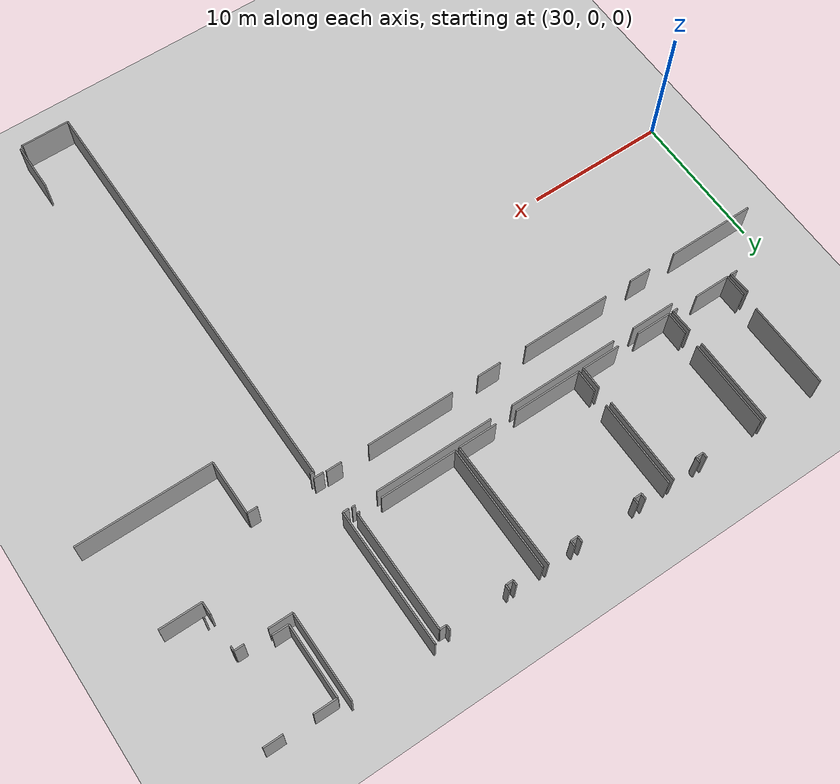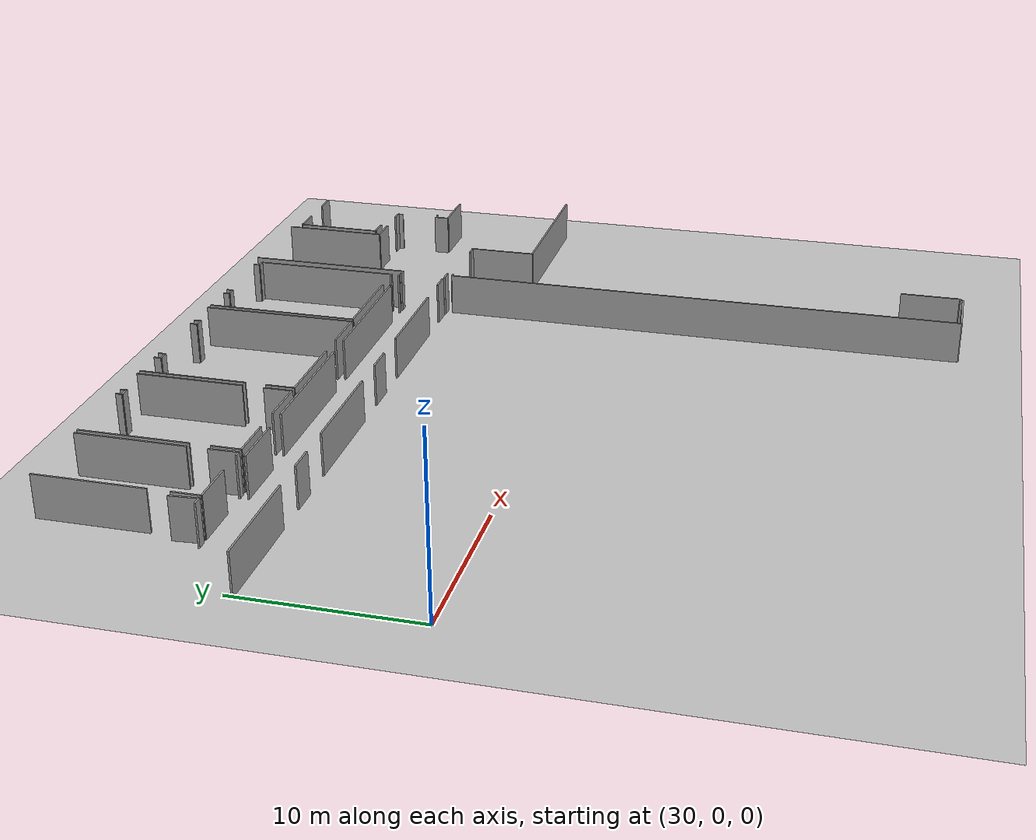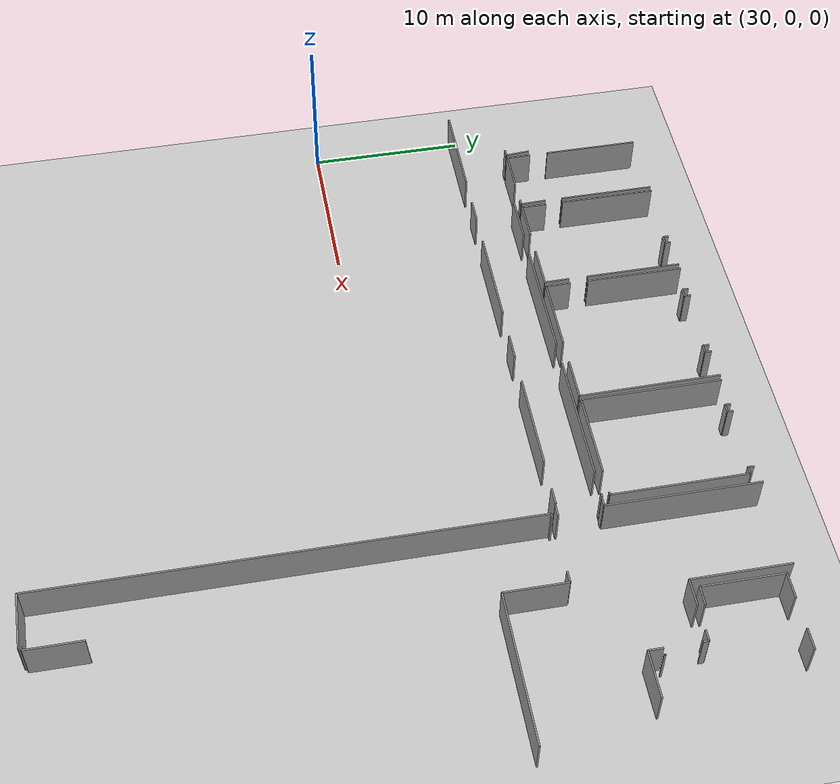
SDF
<sdf version="1.6">
 <world name="default">
  <model name="ground_plane">
   <static>1</static>
   <link name="link">
    <collision name="collision">
     <geometry><plane><normal>0 0 1</normal><size>100 100</size></plane></geometry>
     <surface><friction><ode><mu>100</mu><mu2>50</mu2></ode></friction></surface>
    </collision>
    <visual name="visual">
     <cast_shadows>0</cast_shadows>
     <geometry><plane><normal>0 0 1</normal><size>100 100</size></plane></geometry>
     <material>
      <script><uri>file://media/materials/scripts/gazebo.material</uri><name>Gazebo/Grey</name></script>
     </material>
    </visual>
   </link>
  </model>
  <model name="50010536_PLAN4">
   <static>1</static>
   <link name="Wall_119">
    <collision name="Wall_119_Collision">
     <geometry><box><size>1.10237120274 0.1 2.5</size></box></geometry>
     <pose>0.551185601371 0 1.25 0 0 0</pose>
    </collision>
    <visual name="Wall_119_Visual">
     <pose>0.551185601371 0 1.25 0 0 0</pose>
     <geometry><box><size>1.10237120274 0.1 2.5</size></box></geometry>
     <material>
      <script><uri>file://media/materials/scripts/gazebo.material</uri><name>Gazebo/Grey</name></script>
      <ambient>1 1 1 1</ambient>
     </material>
    </visual>
    <pose>165.775246802 -12.5381074818 0 0 0 3.14159265359</pose>
   </link>
   <link name="Wall_120">
    <collision name="Wall_120_Collision">
     <geometry><box><size>6.30009840333 0.1 2.5</size></box></geometry>
     <pose>3.15004920166 0 1.25 0 0 0</pose>
    </collision>
    <visual name="Wall_120_Visual">
     <pose>3.15004920166 0 1.25 0 0 0</pose>
     <geometry><box><size>6.30009840333 0.1 2.5</size></box></geometry>
     <material>
      <script><uri>file://media/materials/scripts/gazebo.material</uri><name>Gazebo/Grey</name></script>
      <ambient>1 1 1 1</ambient>
     </material>
    </visual>
    <pose>162.703285401 -12.5381074818 0 0 0 3.14159265359</pose>
   </link>
   <link name="Wall_121">
    <collision name="Wall_121_Collision">
     <geometry><box><size>1.70447258991 0.1 2.5</size></box></geometry>
     <pose>0.852236294956 0 1.25 0 0 0</pose>
    </collision>
    <visual name="Wall_121_Visual">
     <pose>0.852236294956 0 1.25 0 0 0</pose>
     <geometry><box><size>1.70447258991 0.1 2.5</size></box></geometry>
     <material>
      <script><uri>file://media/materials/scripts/gazebo.material</uri><name>Gazebo/Grey</name></script>
      <ambient>1 1 1 1</ambient>
     </material>
    </visual>
    <pose>154.420899597 -12.5381074818 0 0 0 3.14159265359</pose>
   </link>
   <link name="Wall_122">
    <collision name="Wall_122_Collision">
     <geometry><box><size>6.40116814272 0.1 2.5</size></box></geometry>
     <pose>3.20058407136 0 1.25 0 0 0</pose>
    </collision>
    <visual name="Wall_122_Visual">
     <pose>3.20058407136 0 1.25 0 0 0</pose>
     <geometry><box><size>6.40116814272 0.1 2.5</size></box></geometry>
     <material>
      <script><uri>file://media/materials/scripts/gazebo.material</uri><name>Gazebo/Grey</name></script>
      <ambient>1 1 1 1</ambient>
     </material>
    </visual>
    <pose>150.708999143 -12.5381074818 0 0 0 3.14159265359</pose>
   </link>
   <link name="Wall_123">
    <collision name="Wall_123_Collision">
     <geometry><box><size>1.60340285052 0.1 2.5</size></box></geometry>
     <pose>0.801701425261 0 1.25 0 0 0</pose>
    </collision>
    <visual name="Wall_123_Visual">
     <pose>0.801701425261 0 1.25 0 0 0</pose>
     <geometry><box><size>1.60340285052 0.1 2.5</size></box></geometry>
     <material>
      <script><uri>file://media/materials/scripts/gazebo.material</uri><name>Gazebo/Grey</name></script>
      <ambient>1 1 1 1</ambient>
     </material>
    </visual>
    <pose>142.31310034 -12.5381074818 0 0 0 3.14159265359</pose>
   </link>
   <link name="Wall_124">
    <collision name="Wall_124_Collision">
     <geometry><box><size>6.3125416627 0.1 2.5</size></box></geometry>
     <pose>3.15627083135 0 1.25 0 0 0</pose>
    </collision>
    <visual name="Wall_124_Visual">
     <pose>3.15627083135 0 1.25 0 0 0</pose>
     <geometry><box><size>6.3125416627 0.1 2.5</size></box></geometry>
     <material>
      <script><uri>file://media/materials/scripts/gazebo.material</uri><name>Gazebo/Grey</name></script>
      <ambient>1 1 1 1</ambient>
     </material>
    </visual>
    <pose>138.714712884 -12.5381074818 0 0 0 3.14159265359</pose>
   </link>
   <link name="Wall_148">
    <collision name="Wall_148_Collision">
     <geometry><box><size>3.18902961623 0.1 2.5</size></box></geometry>
     <pose>1.59451480811 0 1.25 0 0 0</pose>
    </collision>
    <visual name="Wall_148_Visual">
     <pose>1.59451480811 0 1.25 0 0 0</pose>
     <geometry><box><size>3.18902961623 0.1 2.5</size></box></geometry>
     <material>
      <script><uri>file://media/materials/scripts/gazebo.material</uri><name>Gazebo/Grey</name></script>
      <ambient>1 1 1 1</ambient>
     </material>
    </visual>
    <pose>141.09670825 -9.72273116846 0 0 0 0.0</pose>
   </link>
   <link name="Wall_149">
    <collision name="Wall_149_Collision">
     <geometry><box><size>7.99365139828 0.1 2.5</size></box></geometry>
     <pose>3.99682569914 0 1.25 0 0 0</pose>
    </collision>
    <visual name="Wall_149_Visual">
     <pose>3.99682569914 0 1.25 0 0 0</pose>
     <geometry><box><size>7.99365139828 0.1 2.5</size></box></geometry>
     <material>
      <script><uri>file://media/materials/scripts/gazebo.material</uri><name>Gazebo/Grey</name></script>
      <ambient>1 1 1 1</ambient>
     </material>
    </visual>
    <pose>145.855366156 -9.72273116846 0 0 0 0.0</pose>
   </link>
   <link name="Wall_150">
    <collision name="Wall_150_Collision">
     <geometry><box><size>8.5000158715 0.1 2.5</size></box></geometry>
     <pose>4.25000793575 0 1.25 0 0 0</pose>
    </collision>
    <visual name="Wall_150_Visual">
     <pose>4.25000793575 0 1.25 0 0 0</pose>
     <geometry><box><size>8.5000158715 0.1 2.5</size></box></geometry>
     <material>
      <script><uri>file://media/materials/scripts/gazebo.material</uri><name>Gazebo/Grey</name></script>
      <ambient>1 1 1 1</ambient>
     </material>
    </visual>
    <pose>155.468926769 -9.72273116846 0 0 0 0.0</pose>
   </link>
   <link name="Wall_151">
    <collision name="Wall_151_Collision">
     <geometry><box><size>0.243848006667 0.1 2.5</size></box></geometry>
     <pose>0.121924003333 0 1.25 0 0 0</pose>
    </collision>
    <visual name="Wall_151_Visual">
     <pose>0.121924003333 0 1.25 0 0 0</pose>
     <geometry><box><size>0.243848006667 0.1 2.5</size></box></geometry>
     <material>
      <script><uri>file://media/materials/scripts/gazebo.material</uri><name>Gazebo/Grey</name></script>
      <ambient>1 1 1 1</ambient>
     </material>
    </visual>
    <pose>165.531460496 -9.72273116846 0 0 0 0.0224962042779</pose>
   </link>
   <link name="Wall_214">
    <collision name="Wall_214_Collision">
     <geometry><box><size>0.505094752881 0.1 2.5</size></box></geometry>
     <pose>0.25254737644 0 1.25 0 0 0</pose>
    </collision>
    <visual name="Wall_214_Visual">
     <pose>0.25254737644 0 1.25 0 0 0</pose>
     <geometry><box><size>0.505094752881 0.1 2.5</size></box></geometry>
     <material>
      <script><uri>file://media/materials/scripts/gazebo.material</uri><name>Gazebo/Grey</name></script>
      <ambient>1 1 1 1</ambient>
     </material>
    </visual>
    <pose>136.606469225 -9.25557565946 0 0 0 3.14159265359</pose>
   </link>
   <link name="Wall_218">
    <collision name="Wall_218_Collision">
     <geometry><box><size>1.59688646105 0.1 2.5</size></box></geometry>
     <pose>0.798443230526 0 1.25 0 0 0</pose>
    </collision>
    <visual name="Wall_218_Visual">
     <pose>0.798443230526 0 1.25 0 0 0</pose>
     <geometry><box><size>1.59688646105 0.1 2.5</size></box></geometry>
     <material>
      <script><uri>file://media/materials/scripts/gazebo.material</uri><name>Gazebo/Grey</name></script>
      <ambient>1 1 1 1</ambient>
     </material>
    </visual>
    <pose>136.487623401 -7.6631177983 0 0 0 -1.4963039862</pose>
   </link>
   <link name="Wall_219">
    <collision name="Wall_219_Collision">
     <geometry><box><size>0.391581754119 0.1 2.5</size></box></geometry>
     <pose>0.195790877059 0 1.25 0 0 0</pose>
    </collision>
    <visual name="Wall_219_Visual">
     <pose>0.195790877059 0 1.25 0 0 0</pose>
     <geometry><box><size>0.391581754119 0.1 2.5</size></box></geometry>
     <material>
      <script><uri>file://media/materials/scripts/gazebo.material</uri><name>Gazebo/Grey</name></script>
      <ambient>1 1 1 1</ambient>
     </material>
    </visual>
    <pose>141.42937498 -9.25557565946 0 0 0 3.14159265359</pose>
   </link>
   <link name="Wall_220">
    <collision name="Wall_220_Collision">
     <geometry><box><size>2.5881979494 0.1 2.5</size></box></geometry>
     <pose>1.2940989747 0 1.25 0 0 0</pose>
    </collision>
    <visual name="Wall_220_Visual">
     <pose>1.2940989747 0 1.25 0 0 0</pose>
     <geometry><box><size>2.5881979494 0.1 2.5</size></box></geometry>
     <material>
      <script><uri>file://media/materials/scripts/gazebo.material</uri><name>Gazebo/Grey</name></script>
      <ambient>1 1 1 1</ambient>
     </material>
    </visual>
    <pose>139.472228042 -9.25557565946 0 0 0 3.14159265359</pose>
   </link>
   <link name="Wall_221">
    <collision name="Wall_221_Collision">
     <geometry><box><size>1.61604926515 0.1 2.5</size></box></geometry>
     <pose>0.808024632575 0 1.25 0 0 0</pose>
    </collision>
    <visual name="Wall_221_Visual">
     <pose>0.808024632575 0 1.25 0 0 0</pose>
     <geometry><box><size>1.61604926515 0.1 2.5</size></box></geometry>
     <material>
      <script><uri>file://media/materials/scripts/gazebo.material</uri><name>Gazebo/Grey</name></script>
      <ambient>1 1 1 1</ambient>
     </material>
    </visual>
    <pose>136.884030092 -9.25557565946 0 0 0 1.57079632679</pose>
   </link>
   <link name="Wall_222">
    <collision name="Wall_222_Collision">
     <geometry><box><size>6.22455004285 0.1 2.5</size></box></geometry>
     <pose>3.11227502143 0 1.25 0 0 0</pose>
    </collision>
    <visual name="Wall_222_Visual">
     <pose>3.11227502143 0 1.25 0 0 0</pose>
     <geometry><box><size>6.22455004285 0.1 2.5</size></box></geometry>
     <material>
      <script><uri>file://media/materials/scripts/gazebo.material</uri><name>Gazebo/Grey</name></script>
      <ambient>1 1 1 1</ambient>
     </material>
    </visual>
    <pose>136.884030092 -6.41117353903 0 0 0 1.57079632679</pose>
   </link>
   <link name="Wall_223">
    <collision name="Wall_223_Collision">
     <geometry><box><size>6.24125956258 0.1 2.5</size></box></geometry>
     <pose>3.12062978129 0 1.25 0 0 0</pose>
    </collision>
    <visual name="Wall_223_Visual">
     <pose>3.12062978129 0 1.25 0 0 0</pose>
     <geometry><box><size>6.24125956258 0.1 2.5</size></box></geometry>
     <material>
      <script><uri>file://media/materials/scripts/gazebo.material</uri><name>Gazebo/Grey</name></script>
      <ambient>1 1 1 1</ambient>
     </material>
    </visual>
    <pose>141.372745453 -0.186623496175 0 0 0 -1.57079632679</pose>
   </link>
   <link name="Wall_224">
    <collision name="Wall_224_Collision">
     <geometry><box><size>1.66752059618 0.1 2.5</size></box></geometry>
     <pose>0.833760298092 0 1.25 0 0 0</pose>
    </collision>
    <visual name="Wall_224_Visual">
     <pose>0.833760298092 0 1.25 0 0 0</pose>
     <geometry><box><size>1.66752059618 0.1 2.5</size></box></geometry>
     <material>
      <script><uri>file://media/materials/scripts/gazebo.material</uri><name>Gazebo/Grey</name></script>
      <ambient>1 1 1 1</ambient>
     </material>
    </visual>
    <pose>141.372745453 -7.58901691902 0 0 0 -1.53682947907</pose>
   </link>
   <link name="Wall_225">
    <collision name="Wall_225_Collision">
     <geometry><box><size>2.80532012824 0.1 2.5</size></box></geometry>
     <pose>1.40266006412 0 1.25 0 0 0</pose>
    </collision>
    <visual name="Wall_225_Visual">
     <pose>1.40266006412 0 1.25 0 0 0</pose>
     <geometry><box><size>2.80532012824 0.1 2.5</size></box></geometry>
     <material>
      <script><uri>file://media/materials/scripts/gazebo.material</uri><name>Gazebo/Grey</name></script>
      <ambient>1 1 1 1</ambient>
     </material>
    </visual>
    <pose>148.643925975 -9.2664190712 0 0 0 3.14159265359</pose>
   </link>
   <link name="Wall_226">
    <collision name="Wall_226_Collision">
     <geometry><box><size>2.54655112212 0.1 2.5</size></box></geometry>
     <pose>1.27327556106 0 1.25 0 0 0</pose>
    </collision>
    <visual name="Wall_226_Visual">
     <pose>1.27327556106 0 1.25 0 0 0</pose>
     <geometry><box><size>2.54655112212 0.1 2.5</size></box></geometry>
     <material>
      <script><uri>file://media/materials/scripts/gazebo.material</uri><name>Gazebo/Grey</name></script>
      <ambient>1 1 1 1</ambient>
     </material>
    </visual>
    <pose>144.266184173 -9.2664190712 0 0 0 3.14159265359</pose>
   </link>
   <link name="Wall_227">
    <collision name="Wall_227_Collision">
     <geometry><box><size>1.66478113196 0.1 2.5</size></box></geometry>
     <pose>0.832390565978 0 1.25 0 0 0</pose>
    </collision>
    <visual name="Wall_227_Visual">
     <pose>0.832390565978 0 1.25 0 0 0</pose>
     <geometry><box><size>1.66478113196 0.1 2.5</size></box></geometry>
     <material>
      <script><uri>file://media/materials/scripts/gazebo.material</uri><name>Gazebo/Grey</name></script>
      <ambient>1 1 1 1</ambient>
     </material>
    </visual>
    <pose>141.719633051 -9.2664190712 0 0 0 1.57079632679</pose>
   </link>
   <link name="Wall_228">
    <collision name="Wall_228_Collision">
     <geometry><box><size>6.24961432245 0.1 2.5</size></box></geometry>
     <pose>3.12480716122 0 1.25 0 0 0</pose>
    </collision>
    <visual name="Wall_228_Visual">
     <pose>3.12480716122 0 1.25 0 0 0</pose>
     <geometry><box><size>6.24961432245 0.1 2.5</size></box></geometry>
     <material>
      <script><uri>file://media/materials/scripts/gazebo.material</uri><name>Gazebo/Grey</name></script>
      <ambient>1 1 1 1</ambient>
     </material>
    </visual>
    <pose>141.719633051 -6.45271878869 0 0 0 1.57079632679</pose>
   </link>
   <link name="Wall_229">
    <collision name="Wall_229_Collision">
     <geometry><box><size>0.36730470114 0.1 2.5</size></box></geometry>
     <pose>0.18365235057 0 1.25 0 0 0</pose>
    </collision>
    <visual name="Wall_229_Visual">
     <pose>0.18365235057 0 1.25 0 0 0</pose>
     <geometry><box><size>0.36730470114 0.1 2.5</size></box></geometry>
     <material>
      <script><uri>file://media/materials/scripts/gazebo.material</uri><name>Gazebo/Grey</name></script>
      <ambient>1 1 1 1</ambient>
     </material>
    </visual>
    <pose>146.060299019 -0.203104466241 0 0 0 -1.57079632679</pose>
   </link>
   <link name="Wall_230">
    <collision name="Wall_230_Collision">
     <geometry><box><size>0.54394819541 0.1 2.5</size></box></geometry>
     <pose>0.271974097705 0 1.25 0 0 0</pose>
    </collision>
    <visual name="Wall_230_Visual">
     <pose>0.271974097705 0 1.25 0 0 0</pose>
     <geometry><box><size>0.54394819541 0.1 2.5</size></box></geometry>
     <material>
      <script><uri>file://media/materials/scripts/gazebo.material</uri><name>Gazebo/Grey</name></script>
      <ambient>1 1 1 1</ambient>
     </material>
    </visual>
    <pose>146.060299019 -0.570409167381 0 0 0 0.0</pose>
   </link>
   <link name="Wall_231">
    <collision name="Wall_231_Collision">
     <geometry><box><size>0.372332793702 0.1 2.5</size></box></geometry>
     <pose>0.186166396851 0 1.25 0 0 0</pose>
    </collision>
    <visual name="Wall_231_Visual">
     <pose>0.186166396851 0 1.25 0 0 0</pose>
     <geometry><box><size>0.372332793702 0.1 2.5</size></box></geometry>
     <material>
      <script><uri>file://media/materials/scripts/gazebo.material</uri><name>Gazebo/Grey</name></script>
      <ambient>1 1 1 1</ambient>
     </material>
    </visual>
    <pose>146.604247215 -0.570409167381 0 0 0 1.57079632679</pose>
   </link>
   <link name="Wall_232">
    <collision name="Wall_232_Collision">
     <geometry><box><size>6.21309716535 0.1 2.5</size></box></geometry>
     <pose>3.10654858267 0 1.25 0 0 0</pose>
    </collision>
    <visual name="Wall_232_Visual">
     <pose>3.10654858267 0 1.25 0 0 0</pose>
     <geometry><box><size>6.21309716535 0.1 2.5</size></box></geometry>
     <material>
      <script><uri>file://media/materials/scripts/gazebo.material</uri><name>Gazebo/Grey</name></script>
      <ambient>1 1 1 1</ambient>
     </material>
    </visual>
    <pose>148.628181443 -0.198076373679 0 0 0 -1.57079632679</pose>
   </link>
   <link name="Wall_233">
    <collision name="Wall_233_Collision">
     <geometry><box><size>1.62696886031 0.1 2.5</size></box></geometry>
     <pose>0.813484430153 0 1.25 0 0 0</pose>
    </collision>
    <visual name="Wall_233_Visual">
     <pose>0.813484430153 0 1.25 0 0 0</pose>
     <geometry><box><size>1.62696886031 0.1 2.5</size></box></geometry>
     <material>
      <script><uri>file://media/materials/scripts/gazebo.material</uri><name>Gazebo/Grey</name></script>
      <ambient>1 1 1 1</ambient>
     </material>
    </visual>
    <pose>148.628181443 -7.63952639431 0 0 0 -1.56111895779</pose>
   </link>
   <link name="Wall_234">
    <collision name="Wall_234_Collision">
     <geometry><box><size>2.7885598197 0.1 2.5</size></box></geometry>
     <pose>1.39427990985 0 1.25 0 0 0</pose>
    </collision>
    <visual name="Wall_234_Visual">
     <pose>1.39427990985 0 1.25 0 0 0</pose>
     <geometry><box><size>2.7885598197 0.1 2.5</size></box></geometry>
     <material>
      <script><uri>file://media/materials/scripts/gazebo.material</uri><name>Gazebo/Grey</name></script>
      <ambient>1 1 1 1</ambient>
     </material>
    </visual>
    <pose>158.194762404 -9.2664190712 0 0 0 3.14159265359</pose>
   </link>
   <link name="Wall_235">
    <collision name="Wall_235_Collision">
     <geometry><box><size>4.85744214837 0.1 2.5</size></box></geometry>
     <pose>2.42872107418 0 1.25 0 0 0</pose>
    </collision>
    <visual name="Wall_235_Visual">
     <pose>2.42872107418 0 1.25 0 0 0</pose>
     <geometry><box><size>4.85744214837 0.1 2.5</size></box></geometry>
     <material>
      <script><uri>file://media/materials/scripts/gazebo.material</uri><name>Gazebo/Grey</name></script>
      <ambient>1 1 1 1</ambient>
     </material>
    </visual>
    <pose>153.851810939 -9.2664190712 0 0 0 3.14159265359</pose>
   </link>
   <link name="Wall_236">
    <collision name="Wall_236_Collision">
     <geometry><box><size>1.63633939625 0.1 2.5</size></box></geometry>
     <pose>0.818169698124 0 1.25 0 0 0</pose>
    </collision>
    <visual name="Wall_236_Visual">
     <pose>0.818169698124 0 1.25 0 0 0</pose>
     <geometry><box><size>1.63633939625 0.1 2.5</size></box></geometry>
     <material>
      <script><uri>file://media/materials/scripts/gazebo.material</uri><name>Gazebo/Grey</name></script>
      <ambient>1 1 1 1</ambient>
     </material>
    </visual>
    <pose>148.99436879 -9.2664190712 0 0 0 1.57079632679</pose>
   </link>
   <link name="Wall_237">
    <collision name="Wall_237_Collision">
     <geometry><box><size>6.26226073707 0.1 2.5</size></box></geometry>
     <pose>3.13113036854 0 1.25 0 0 0</pose>
    </collision>
    <visual name="Wall_237_Visual">
     <pose>3.13113036854 0 1.25 0 0 0</pose>
     <geometry><box><size>6.26226073707 0.1 2.5</size></box></geometry>
     <material>
      <script><uri>file://media/materials/scripts/gazebo.material</uri><name>Gazebo/Grey</name></script>
      <ambient>1 1 1 1</ambient>
     </material>
    </visual>
    <pose>148.99436879 -6.44009776847 0 0 0 1.57079632679</pose>
   </link>
   <link name="Wall_238">
    <collision name="Wall_238_Collision">
     <geometry><box><size>0.416646033711 0.1 2.5</size></box></geometry>
     <pose>0.208323016856 0 1.25 0 0 0</pose>
    </collision>
    <visual name="Wall_238_Visual">
     <pose>0.208323016856 0 1.25 0 0 0</pose>
     <geometry><box><size>0.416646033711 0.1 2.5</size></box></geometry>
     <material>
      <script><uri>file://media/materials/scripts/gazebo.material</uri><name>Gazebo/Grey</name></script>
      <ambient>1 1 1 1</ambient>
     </material>
    </visual>
    <pose>150.822766086 -0.177837031394 0 0 0 -1.57079632679</pose>
   </link>
   <link name="Wall_239">
    <collision name="Wall_239_Collision">
     <geometry><box><size>0.568072881948 0.1 2.5</size></box></geometry>
     <pose>0.284036440974 0 1.25 0 0 0</pose>
    </collision>
    <visual name="Wall_239_Visual">
     <pose>0.284036440974 0 1.25 0 0 0</pose>
     <geometry><box><size>0.568072881948 0.1 2.5</size></box></geometry>
     <material>
      <script><uri>file://media/materials/scripts/gazebo.material</uri><name>Gazebo/Grey</name></script>
      <ambient>1 1 1 1</ambient>
     </material>
    </visual>
    <pose>150.822766086 -0.594483065105 0 0 0 0.0</pose>
   </link>
   <link name="Wall_240">
    <collision name="Wall_240_Collision">
     <geometry><box><size>0.416646033711 0.1 2.5</size></box></geometry>
     <pose>0.208323016856 0 1.25 0 0 0</pose>
    </collision>
    <visual name="Wall_240_Visual">
     <pose>0.208323016856 0 1.25 0 0 0</pose>
     <geometry><box><size>0.416646033711 0.1 2.5</size></box></geometry>
     <material>
      <script><uri>file://media/materials/scripts/gazebo.material</uri><name>Gazebo/Grey</name></script>
      <ambient>1 1 1 1</ambient>
     </material>
    </visual>
    <pose>151.390838968 -0.594483065105 0 0 0 1.57079632679</pose>
   </link>
   <link name="Wall_241">
    <collision name="Wall_241_Collision">
     <geometry><box><size>0.425762625782 0.1 2.5</size></box></geometry>
     <pose>0.212881312891 0 1.25 0 0 0</pose>
    </collision>
    <visual name="Wall_241_Visual">
     <pose>0.212881312891 0 1.25 0 0 0</pose>
     <geometry><box><size>0.425762625782 0.1 2.5</size></box></geometry>
     <material>
      <script><uri>file://media/materials/scripts/gazebo.material</uri><name>Gazebo/Grey</name></script>
      <ambient>1 1 1 1</ambient>
     </material>
    </visual>
    <pose>155.635514078 -0.177837031394 0 0 0 -1.57079632679</pose>
   </link>
   <link name="Wall_242">
    <collision name="Wall_242_Collision">
     <geometry><box><size>0.523124781767 0.1 2.5</size></box></geometry>
     <pose>0.261562390883 0 1.25 0 0 0</pose>
    </collision>
    <visual name="Wall_242_Visual">
     <pose>0.261562390883 0 1.25 0 0 0</pose>
     <geometry><box><size>0.523124781767 0.1 2.5</size></box></geometry>
     <material>
      <script><uri>file://media/materials/scripts/gazebo.material</uri><name>Gazebo/Grey</name></script>
      <ambient>1 1 1 1</ambient>
     </material>
    </visual>
    <pose>155.635514078 -0.603599657176 0 0 0 0.0</pose>
   </link>
   <link name="Wall_243">
    <collision name="Wall_243_Collision">
     <geometry><box><size>0.423375551535 0.1 2.5</size></box></geometry>
     <pose>0.211687775767 0 1.25 0 0 0</pose>
    </collision>
    <visual name="Wall_243_Visual">
     <pose>0.211687775767 0 1.25 0 0 0</pose>
     <geometry><box><size>0.423375551535 0.1 2.5</size></box></geometry>
     <material>
      <script><uri>file://media/materials/scripts/gazebo.material</uri><name>Gazebo/Grey</name></script>
      <ambient>1 1 1 1</ambient>
     </material>
    </visual>
    <pose>156.15863886 -0.603599657176 0 0 0 1.57079632679</pose>
   </link>
   <link name="Wall_244">
    <collision name="Wall_244_Collision">
     <geometry><box><size>9.08652291238 0.1 2.5</size></box></geometry>
     <pose>4.54326145619 0 1.25 0 0 0</pose>
    </collision>
    <visual name="Wall_244_Visual">
     <pose>4.54326145619 0 1.25 0 0 0</pose>
     <geometry><box><size>9.08652291238 0.1 2.5</size></box></geometry>
     <material>
      <script><uri>file://media/materials/scripts/gazebo.material</uri><name>Gazebo/Grey</name></script>
      <ambient>1 1 1 1</ambient>
     </material>
    </visual>
    <pose>158.117563407 -0.180224105641 0 0 0 -1.56230023578</pose>
   </link>
   <link name="Wall_245">
    <collision name="Wall_245_Collision">
     <geometry><box><size>0.176745071898 0.1 2.5</size></box></geometry>
     <pose>0.0883725359489 0 1.25 0 0 0</pose>
    </collision>
    <visual name="Wall_245_Visual">
     <pose>0.0883725359489 0 1.25 0 0 0</pose>
     <geometry><box><size>0.176745071898 0.1 2.5</size></box></geometry>
     <material>
      <script><uri>file://media/materials/scripts/gazebo.material</uri><name>Gazebo/Grey</name></script>
      <ambient>1 1 1 1</ambient>
     </material>
    </visual>
    <pose>165.708205568 -9.23033361902 0 0 0 3.14159265359</pose>
   </link>
   <link name="Wall_246">
    <collision name="Wall_246_Collision">
     <geometry><box><size>5.47376440339 0.1 2.5</size></box></geometry>
     <pose>2.7368822017 0 1.25 0 0 0</pose>
    </collision>
    <visual name="Wall_246_Visual">
     <pose>2.7368822017 0 1.25 0 0 0</pose>
     <geometry><box><size>5.47376440339 0.1 2.5</size></box></geometry>
     <material>
      <script><uri>file://media/materials/scripts/gazebo.material</uri><name>Gazebo/Grey</name></script>
      <ambient>1 1 1 1</ambient>
     </material>
    </visual>
    <pose>163.96894264 -9.23033361902 0 0 0 3.14159265359</pose>
   </link>
   <link name="Wall_247">
    <collision name="Wall_247_Collision">
     <geometry><box><size>9.01316065137 0.1 2.5</size></box></geometry>
     <pose>4.50658032568 0 1.25 0 0 0</pose>
    </collision>
    <visual name="Wall_247_Visual">
     <pose>4.50658032568 0 1.25 0 0 0</pose>
     <geometry><box><size>9.01316065137 0.1 2.5</size></box></geometry>
     <material>
      <script><uri>file://media/materials/scripts/gazebo.material</uri><name>Gazebo/Grey</name></script>
      <ambient>1 1 1 1</ambient>
     </material>
    </visual>
    <pose>158.495178237 -9.23033361902 0 0 0 1.57079632679</pose>
   </link>
   <link name="Wall_248">
    <collision name="Wall_248_Collision">
     <geometry><box><size>0.362784496715 0.1 2.5</size></box></geometry>
     <pose>0.181392248357 0 1.25 0 0 0</pose>
    </collision>
    <visual name="Wall_248_Visual">
     <pose>0.181392248357 0 1.25 0 0 0</pose>
     <geometry><box><size>0.362784496715 0.1 2.5</size></box></geometry>
     <material>
      <script><uri>file://media/materials/scripts/gazebo.material</uri><name>Gazebo/Grey</name></script>
      <ambient>1 1 1 1</ambient>
     </material>
    </visual>
    <pose>160.437596419 -0.217172967654 0 0 0 -1.57079632679</pose>
   </link>
   <link name="Wall_249">
    <collision name="Wall_249_Collision">
     <geometry><box><size>0.524902390249 0.1 2.5</size></box></geometry>
     <pose>0.262451195124 0 1.25 0 0 0</pose>
    </collision>
    <visual name="Wall_249_Visual">
     <pose>0.262451195124 0 1.25 0 0 0</pose>
     <geometry><box><size>0.524902390249 0.1 2.5</size></box></geometry>
     <material>
      <script><uri>file://media/materials/scripts/gazebo.material</uri><name>Gazebo/Grey</name></script>
      <ambient>1 1 1 1</ambient>
     </material>
    </visual>
    <pose>160.437596419 -0.579957464368 0 0 0 0.0</pose>
   </link>
   <link name="Wall_250">
    <collision name="Wall_250_Collision">
     <geometry><box><size>0.38188109069 0.1 2.5</size></box></geometry>
     <pose>0.190940545345 0 1.25 0 0 0</pose>
    </collision>
    <visual name="Wall_250_Visual">
     <pose>0.190940545345 0 1.25 0 0 0</pose>
     <geometry><box><size>0.38188109069 0.1 2.5</size></box></geometry>
     <material>
      <script><uri>file://media/materials/scripts/gazebo.material</uri><name>Gazebo/Grey</name></script>
      <ambient>1 1 1 1</ambient>
     </material>
    </visual>
    <pose>160.96249881 -0.579957464368 0 0 0 1.57079632679</pose>
   </link>
   <link name="Wall_251">
    <collision name="Wall_251_Collision">
     <geometry><box><size>0.38188109069 0.1 2.5</size></box></geometry>
     <pose>0.190940545345 0 1.25 0 0 0</pose>
    </collision>
    <visual name="Wall_251_Visual">
     <pose>0.190940545345 0 1.25 0 0 0</pose>
     <geometry><box><size>0.38188109069 0.1 2.5</size></box></geometry>
     <material>
      <script><uri>file://media/materials/scripts/gazebo.material</uri><name>Gazebo/Grey</name></script>
      <ambient>1 1 1 1</ambient>
     </material>
    </visual>
    <pose>165.210983081 -0.198076373679 0 0 0 -1.57079632679</pose>
   </link>
   <link name="Wall_252">
    <collision name="Wall_252_Collision">
     <geometry><box><size>0.477160905311 0.1 2.5</size></box></geometry>
     <pose>0.238580452655 0 1.25 0 0 0</pose>
    </collision>
    <visual name="Wall_252_Visual">
     <pose>0.238580452655 0 1.25 0 0 0</pose>
     <geometry><box><size>0.477160905311 0.1 2.5</size></box></geometry>
     <material>
      <script><uri>file://media/materials/scripts/gazebo.material</uri><name>Gazebo/Grey</name></script>
      <ambient>1 1 1 1</ambient>
     </material>
    </visual>
    <pose>165.210983081 -0.579957464368 0 0 0 0.0</pose>
   </link>
   <link name="Wall_253">
    <collision name="Wall_253_Collision">
     <geometry><box><size>8.6503994176 0.1 2.5</size></box></geometry>
     <pose>4.3251997088 0 1.25 0 0 0</pose>
    </collision>
    <visual name="Wall_253_Visual">
     <pose>4.3251997088 0 1.25 0 0 0</pose>
     <geometry><box><size>8.6503994176 0.1 2.5</size></box></geometry>
     <material>
      <script><uri>file://media/materials/scripts/gazebo.material</uri><name>Gazebo/Grey</name></script>
      <ambient>1 1 1 1</ambient>
     </material>
    </visual>
    <pose>165.688143986 -0.579957464368 0 0 0 -1.56847717383</pose>
   </link>
   <link name="Wall_255">
    <collision name="Wall_255_Collision">
     <geometry><box><size>0.701139574009 0.1 2.5</size></box></geometry>
     <pose>0.350569787004 0 1.25 0 0 0</pose>
    </collision>
    <visual name="Wall_255_Visual">
     <pose>0.350569787004 0 1.25 0 0 0</pose>
     <geometry><box><size>0.701139574009 0.1 2.5</size></box></geometry>
     <material>
      <script><uri>file://media/materials/scripts/gazebo.material</uri><name>Gazebo/Grey</name></script>
      <ambient>1 1 1 1</ambient>
     </material>
    </visual>
    <pose>166.659226105 -12.5924515126 0 0 0 3.14159265359</pose>
   </link>
   <link name="Wall_256">
    <collision name="Wall_256_Collision">
     <geometry><box><size>0.435514078024 0.1 2.5</size></box></geometry>
     <pose>0.217757039012 0 1.25 0 0 0</pose>
    </collision>
    <visual name="Wall_256_Visual">
     <pose>0.217757039012 0 1.25 0 0 0</pose>
     <geometry><box><size>0.435514078024 0.1 2.5</size></box></geometry>
     <material>
      <script><uri>file://media/materials/scripts/gazebo.material</uri><name>Gazebo/Grey</name></script>
      <ambient>1 1 1 1</ambient>
     </material>
    </visual>
    <pose>165.958086531 -9.75934990318 0 0 0 0.0</pose>
   </link>
   <link name="Wall_257">
    <collision name="Wall_257_Collision">
     <geometry><box><size>9.75934990318 0.1 2.5</size></box></geometry>
     <pose>4.87967495159 0 1.25 0 0 0</pose>
    </collision>
    <visual name="Wall_257_Visual">
     <pose>4.87967495159 0 1.25 0 0 0</pose>
     <geometry><box><size>9.75934990318 0.1 2.5</size></box></geometry>
     <material>
      <script><uri>file://media/materials/scripts/gazebo.material</uri><name>Gazebo/Grey</name></script>
      <ambient>1 1 1 1</ambient>
     </material>
    </visual>
    <pose>166.393600609 -9.75934990318 0 0 0 1.57079632679</pose>
   </link>
   <link name="Wall_258">
    <collision name="Wall_258_Collision">
     <geometry><box><size>6.2254642415 0.1 2.5</size></box></geometry>
     <pose>3.11273212075 0 1.25 0 0 0</pose>
    </collision>
    <visual name="Wall_258_Visual">
     <pose>3.11273212075 0 1.25 0 0 0</pose>
     <geometry><box><size>6.2254642415 0.1 2.5</size></box></geometry>
     <material>
      <script><uri>file://media/materials/scripts/gazebo.material</uri><name>Gazebo/Grey</name></script>
      <ambient>1 1 1 1</ambient>
     </material>
    </visual>
    <pose>172.18047805 -0.0 0 0 0 -1.57079632679</pose>
   </link>
   <link name="Wall_259">
    <collision name="Wall_259_Collision">
     <geometry><box><size>1.70904358315 0.1 2.5</size></box></geometry>
     <pose>0.854521791575 0 1.25 0 0 0</pose>
    </collision>
    <visual name="Wall_259_Visual">
     <pose>0.854521791575 0 1.25 0 0 0</pose>
     <geometry><box><size>1.70904358315 0.1 2.5</size></box></geometry>
     <material>
      <script><uri>file://media/materials/scripts/gazebo.material</uri><name>Gazebo/Grey</name></script>
      <ambient>1 1 1 1</ambient>
     </material>
    </visual>
    <pose>172.18047805 -6.2254642415 0 0 0 0.0</pose>
   </link>
   <link name="Wall_260">
    <collision name="Wall_260_Collision">
     <geometry><box><size>0.701393518078 0.1 2.5</size></box></geometry>
     <pose>0.350696759039 0 1.25 0 0 0</pose>
    </collision>
    <visual name="Wall_260_Visual">
     <pose>0.350696759039 0 1.25 0 0 0</pose>
     <geometry><box><size>0.701393518078 0.1 2.5</size></box></geometry>
     <material>
      <script><uri>file://media/materials/scripts/gazebo.material</uri><name>Gazebo/Grey</name></script>
      <ambient>1 1 1 1</ambient>
     </material>
    </visual>
    <pose>175.509684792 -6.2254642415 0 0 0 0.0</pose>
   </link>
   <link name="Wall_261">
    <collision name="Wall_261_Collision">
     <geometry><box><size>0.335993397454 0.1 2.5</size></box></geometry>
     <pose>0.167996698727 0 1.25 0 0 0</pose>
    </collision>
    <visual name="Wall_261_Visual">
     <pose>0.167996698727 0 1.25 0 0 0</pose>
     <geometry><box><size>0.335993397454 0.1 2.5</size></box></geometry>
     <material>
      <script><uri>file://media/materials/scripts/gazebo.material</uri><name>Gazebo/Grey</name></script>
      <ambient>1 1 1 1</ambient>
     </material>
    </visual>
    <pose>176.21107831 -6.2254642415 0 0 0 -1.57079632679</pose>
   </link>
   <link name="Wall_262">
    <collision name="Wall_262_Collision">
     <geometry><box><size>0.914706535885 0.1 2.5</size></box></geometry>
     <pose>0.457353267943 0 1.25 0 0 0</pose>
    </collision>
    <visual name="Wall_262_Visual">
     <pose>0.457353267943 0 1.25 0 0 0</pose>
     <geometry><box><size>0.914706535885 0.1 2.5</size></box></geometry>
     <material>
      <script><uri>file://media/materials/scripts/gazebo.material</uri><name>Gazebo/Grey</name></script>
      <ambient>1 1 1 1</ambient>
     </material>
    </visual>
    <pose>176.21107831 -8.83011776656 0 0 0 -1.57079632679</pose>
   </link>
   <link name="Wall_263">
    <collision name="Wall_263_Collision">
     <geometry><box><size>2.97419293401 0.1 2.5</size></box></geometry>
     <pose>1.487096467 0 1.25 0 0 0</pose>
    </collision>
    <visual name="Wall_263_Visual">
     <pose>1.487096467 0 1.25 0 0 0</pose>
     <geometry><box><size>2.97419293401 0.1 2.5</size></box></geometry>
     <material>
      <script><uri>file://media/materials/scripts/gazebo.material</uri><name>Gazebo/Grey</name></script>
      <ambient>1 1 1 1</ambient>
     </material>
    </visual>
    <pose>176.21107831 -9.74482430245 0 0 0 0.0</pose>
   </link>
   <link name="Wall_266">
    <collision name="Wall_266_Collision">
     <geometry><box><size>0.116154017078 0.1 2.5</size></box></geometry>
     <pose>0.0580770085389 0 1.25 0 0 0</pose>
    </collision>
    <visual name="Wall_266_Visual">
     <pose>0.0580770085389 0 1.25 0 0 0</pose>
     <geometry><box><size>0.116154017078 0.1 2.5</size></box></geometry>
     <material>
      <script><uri>file://media/materials/scripts/gazebo.material</uri><name>Gazebo/Grey</name></script>
      <ambient>1 1 1 1</ambient>
     </material>
    </visual>
    <pose>176.629832079 -8.9317461829 0 0 0 1.57079632679</pose>
   </link>
   <link name="Wall_271">
    <collision name="Wall_271_Collision">
     <geometry><box><size>1.17144398946 0.1 2.5</size></box></geometry>
     <pose>0.585721994731 0 1.25 0 0 0</pose>
    </collision>
    <visual name="Wall_271_Visual">
     <pose>0.585721994731 0 1.25 0 0 0</pose>
     <geometry><box><size>1.17144398946 0.1 2.5</size></box></geometry>
     <material>
      <script><uri>file://media/materials/scripts/gazebo.material</uri><name>Gazebo/Grey</name></script>
      <ambient>1 1 1 1</ambient>
     </material>
    </visual>
    <pose>173.917709424 -5.76653652033 0 0 0 3.14159265359</pose>
   </link>
   <link name="Wall_272">
    <collision name="Wall_272_Collision">
     <geometry><box><size>5.16748246199 0.1 2.5</size></box></geometry>
     <pose>2.58374123099 0 1.25 0 0 0</pose>
    </collision>
    <visual name="Wall_272_Visual">
     <pose>2.58374123099 0 1.25 0 0 0</pose>
     <geometry><box><size>5.16748246199 0.1 2.5</size></box></geometry>
     <material>
      <script><uri>file://media/materials/scripts/gazebo.material</uri><name>Gazebo/Grey</name></script>
      <ambient>1 1 1 1</ambient>
     </material>
    </visual>
    <pose>172.746265435 -5.76653652033 0 0 0 1.57079632679</pose>
   </link>
   <link name="Wall_273">
    <collision name="Wall_273_Collision">
     <geometry><box><size>1.64860489477 0.1 2.5</size></box></geometry>
     <pose>0.824302447386 0 1.25 0 0 0</pose>
    </collision>
    <visual name="Wall_273_Visual">
     <pose>0.824302447386 0 1.25 0 0 0</pose>
     <geometry><box><size>1.64860489477 0.1 2.5</size></box></geometry>
     <material>
      <script><uri>file://media/materials/scripts/gazebo.material</uri><name>Gazebo/Grey</name></script>
      <ambient>1 1 1 1</ambient>
     </material>
    </visual>
    <pose>172.746265435 -0.599054058344 0 0 0 0.0</pose>
   </link>
   <link name="Wall_274">
    <collision name="Wall_274_Collision">
     <geometry><box><size>1.35580738342 0.1 2.5</size></box></geometry>
     <pose>0.677903691712 0 1.25 0 0 0</pose>
    </collision>
    <visual name="Wall_274_Visual">
     <pose>0.677903691712 0 1.25 0 0 0</pose>
     <geometry><box><size>1.35580738342 0.1 2.5</size></box></geometry>
     <material>
      <script><uri>file://media/materials/scripts/gazebo.material</uri><name>Gazebo/Grey</name></script>
      <ambient>1 1 1 1</ambient>
     </material>
    </visual>
    <pose>176.399504809 -0.599054058344 0 0 0 0.0</pose>
   </link>
   <link name="Wall_288">
    <collision name="Wall_288_Collision">
     <geometry><box><size>3.54302764816 0.1 2.5</size></box></geometry>
     <pose>1.77151382408 0 1.25 0 0 0</pose>
    </collision>
    <visual name="Wall_288_Visual">
     <pose>1.77151382408 0 1.25 0 0 0</pose>
     <geometry><box><size>3.54302764816 0.1 2.5</size></box></geometry>
     <material>
      <script><uri>file://media/materials/scripts/gazebo.material</uri><name>Gazebo/Grey</name></script>
      <ambient>1 1 1 1</ambient>
     </material>
    </visual>
    <pose>170.133180967 -40.3790115227 0 0 0 -1.57079632679</pose>
   </link>
   <link name="Wall_289">
    <collision name="Wall_289_Collision">
     <geometry><box><size>0.177506904104 0.1 2.5</size></box></geometry>
     <pose>0.0887534520522 0 1.25 0 0 0</pose>
    </collision>
    <visual name="Wall_289_Visual">
     <pose>0.0887534520522 0 1.25 0 0 0</pose>
     <geometry><box><size>0.177506904104 0.1 2.5</size></box></geometry>
     <material>
      <script><uri>file://media/materials/scripts/gazebo.material</uri><name>Gazebo/Grey</name></script>
      <ambient>1 1 1 1</ambient>
     </material>
    </visual>
    <pose>170.133180967 -43.9220391709 0 0 0 3.14159265359</pose>
   </link>
   <link name="Wall_290">
    <collision name="Wall_290_Collision">
     <geometry><box><size>0.171666190522 0.1 2.5</size></box></geometry>
     <pose>0.0858330952608 0 1.25 0 0 0</pose>
    </collision>
    <visual name="Wall_290_Visual">
     <pose>0.0858330952608 0 1.25 0 0 0</pose>
     <geometry><box><size>0.171666190522 0.1 2.5</size></box></geometry>
     <material>
      <script><uri>file://media/materials/scripts/gazebo.material</uri><name>Gazebo/Grey</name></script>
      <ambient>1 1 1 1</ambient>
     </material>
    </visual>
    <pose>169.955674063 -43.9220391709 0 0 0 -1.57079632679</pose>
   </link>
   <link name="Wall_291">
    <collision name="Wall_291_Collision">
     <geometry><box><size>3.54201187189 0.1 2.5</size></box></geometry>
     <pose>1.77100593594 0 1.25 0 0 0</pose>
    </collision>
    <visual name="Wall_291_Visual">
     <pose>1.77100593594 0 1.25 0 0 0</pose>
     <geometry><box><size>3.54201187189 0.1 2.5</size></box></geometry>
     <material>
      <script><uri>file://media/materials/scripts/gazebo.material</uri><name>Gazebo/Grey</name></script>
      <ambient>1 1 1 1</ambient>
     </material>
    </visual>
    <pose>169.955674063 -44.0937053614 0 0 0 3.14159265359</pose>
   </link>
   <link name="Wall_292">
    <collision name="Wall_292_Collision">
     <geometry><box><size>31.1388756626 0.1 2.5</size></box></geometry>
     <pose>15.5694378313 0 1.25 0 0 0</pose>
    </collision>
    <visual name="Wall_292_Visual">
     <pose>15.5694378313 0 1.25 0 0 0</pose>
     <geometry><box><size>31.1388756626 0.1 2.5</size></box></geometry>
     <material>
      <script><uri>file://media/materials/scripts/gazebo.material</uri><name>Gazebo/Grey</name></script>
      <ambient>1 1 1 1</ambient>
     </material>
    </visual>
    <pose>166.413662191 -44.0937053614 0 0 0 1.57079632679</pose>
   </link>
   <link name="Wall_293">
    <collision name="Wall_293_Collision">
     <geometry><box><size>0.279338475701 0.1 2.5</size></box></geometry>
     <pose>0.13966923785 0 1.25 0 0 0</pose>
    </collision>
    <visual name="Wall_293_Visual">
     <pose>0.13966923785 0 1.25 0 0 0</pose>
     <geometry><box><size>0.279338475701 0.1 2.5</size></box></geometry>
     <material>
      <script><uri>file://media/materials/scripts/gazebo.material</uri><name>Gazebo/Grey</name></script>
      <ambient>1 1 1 1</ambient>
     </material>
    </visual>
    <pose>166.413662191 -12.9548296988 0 0 0 0.0</pose>
   </link>
   <link name="Wall_294">
    <collision name="Wall_294_Collision">
     <geometry><box><size>0.729835253785 0.1 2.5</size></box></geometry>
     <pose>0.364917626893 0 1.25 0 0 0</pose>
    </collision>
    <visual name="Wall_294_Visual">
     <pose>0.364917626893 0 1.25 0 0 0</pose>
     <geometry><box><size>0.729835253785 0.1 2.5</size></box></geometry>
     <material>
      <script><uri>file://media/materials/scripts/gazebo.material</uri><name>Gazebo/Grey</name></script>
      <ambient>1 1 1 1</ambient>
     </material>
    </visual>
    <pose>170.441976955 -12.9548296988 0 0 0 0.0</pose>
   </link>
   <link name="Wall_295">
    <collision name="Wall_295_Collision">
     <geometry><box><size>3.97904961432 0.1 2.5</size></box></geometry>
     <pose>1.98952480716 0 1.25 0 0 0</pose>
    </collision>
    <visual name="Wall_295_Visual">
     <pose>1.98952480716 0 1.25 0 0 0</pose>
     <geometry><box><size>3.97904961432 0.1 2.5</size></box></geometry>
     <material>
      <script><uri>file://media/materials/scripts/gazebo.material</uri><name>Gazebo/Grey</name></script>
      <ambient>1 1 1 1</ambient>
     </material>
    </visual>
    <pose>171.171812208 -12.9548296988 0 0 0 -1.57079632679</pose>
   </link>
   <link name="Wall_296">
    <collision name="Wall_296_Collision">
     <geometry><box><size>9.63920896423 0.1 2.5</size></box></geometry>
     <pose>4.81960448211 0 1.25 0 0 0</pose>
    </collision>
    <visual name="Wall_296_Visual">
     <pose>4.81960448211 0 1.25 0 0 0</pose>
     <geometry><box><size>9.63920896423 0.1 2.5</size></box></geometry>
     <material>
      <script><uri>file://media/materials/scripts/gazebo.material</uri><name>Gazebo/Grey</name></script>
      <ambient>1 1 1 1</ambient>
     </material>
    </visual>
    <pose>171.171812208 -16.9338793131 0 0 0 0.0</pose>
   </link>
   <pose>-102.5 22.0619893343 0 0 0 0</pose>
  </model>
 </world>
</sdf>
